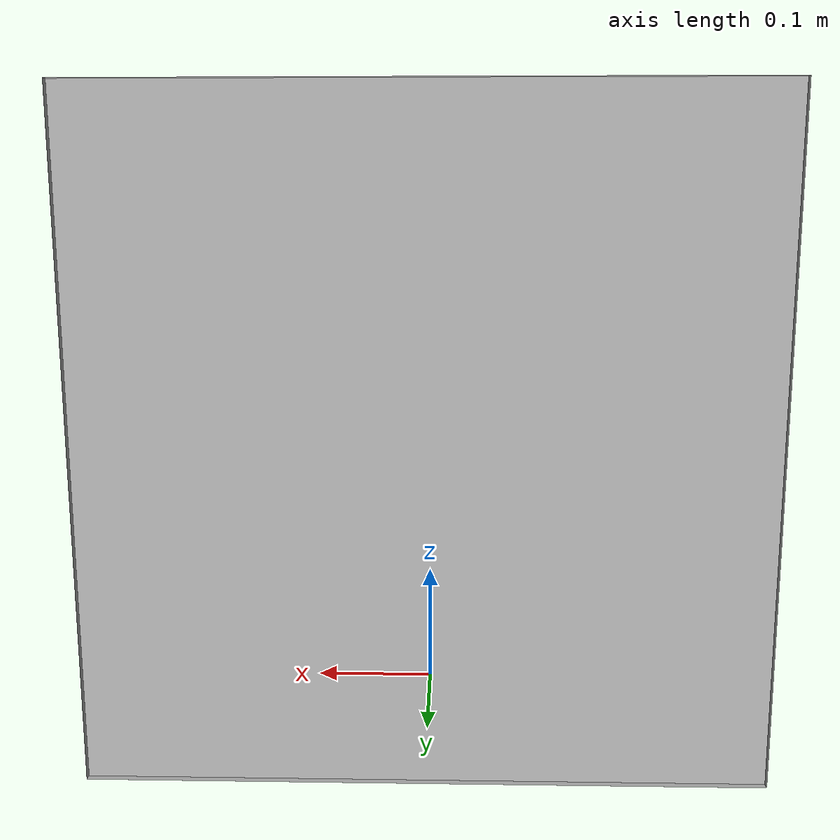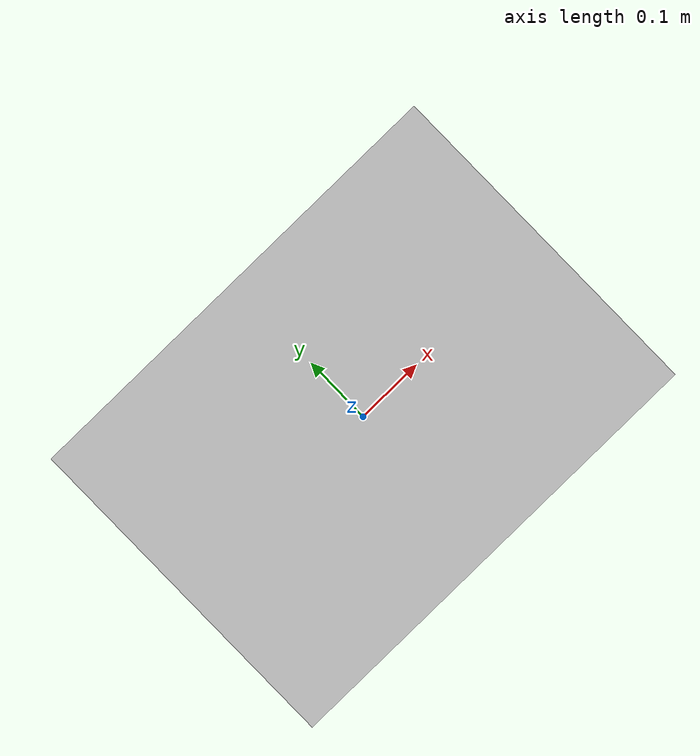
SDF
<?xml version='1.0'?>
<sdf version='1.4'>
  <model name="Filer">
  	<static>true</static>

  	<link name='Filer'>
            <pose>0 0 0.0 0 0 0</pose>

            <visual name='base_visual'>
              <geometry>
                <box>
                  <size>0.5 0.37 0.0</size>
                </box>
              </geometry>
              <material>
                <script>
                  <uri>model://Filer/materials/scripts</uri>
                  <uri>model://Filer/materials/textures</uri>
                  <name>Filer/Image</name>
                </script>
              </material>
            </visual>

            <visual name='top_visual'>
              <pose>0 0 0.5 0 0 0</pose>
              <geometry>
                <box>
                  <size>0.5 0.37 0.0 </size>
                </box>
              </geometry>
              <material>
                <script>
                  <uri>model://Filer/materials/scripts</uri>
                  <uri>model://Filer/materials/textures</uri>
                  <name>Filer/Image</name>
                </script>
              </material>
            </visual>

            <visual name='front_visual'>
              <pose>0.25 0 0.25 0 0 0</pose>
              <geometry>
                <box>
                  <size>0.0 0.37 0.50</size>
                </box>
              </geometry>
              <material>
                <script>
                  <uri>model://Filer/materials/scripts</uri>
                  <uri>model://Filer/materials/textures</uri>
                  <name>Filer/Image</name>
                </script>
              </material>
            </visual>

            <visual name='back_visual'>
              <pose>-0.25 0 0.25 0 0 0</pose>
              <geometry>
                <box>
                  <size>0.0 0.37 0.50</size>
                </box>
              </geometry>
              <material>
                <script>
                  <uri>model://Filer/materials/scripts</uri>
                  <uri>model://Filer/materials/textures</uri>
                  <name>Filer/Image</name>
                </script>
              </material>
            </visual>

            <visual name='side1_visual'>
              <pose>0 -0.18 0.25 0 0 0</pose>
              <geometry>
                <box>
                  <size>0.5 0.0 0.50</size>
                </box>
              </geometry>
              <material>
                <script>
                  <uri>model://Filer/materials/scripts</uri>
                  <uri>model://Filer/materials/textures</uri>
                  <name>Filer/Image</name>
                </script>
              </material>
            </visual>

            <visual name='side2_visual'>
              <pose>0 0.18 0.25 0 0 0</pose>
              <geometry>
                <box>
                  <size>0.5 0.0 0.50</size>
                </box>
              </geometry>
              <material>
                <script>
                  <uri>model://Filer/materials/scripts</uri>
                  <uri>model://Filer/materials/textures</uri>
                  <name>Filer/Image</name>
                </script>
              </material>
            </visual>

  </link>

<!-- Vicon Plugin -->

  </model>
</sdf>
